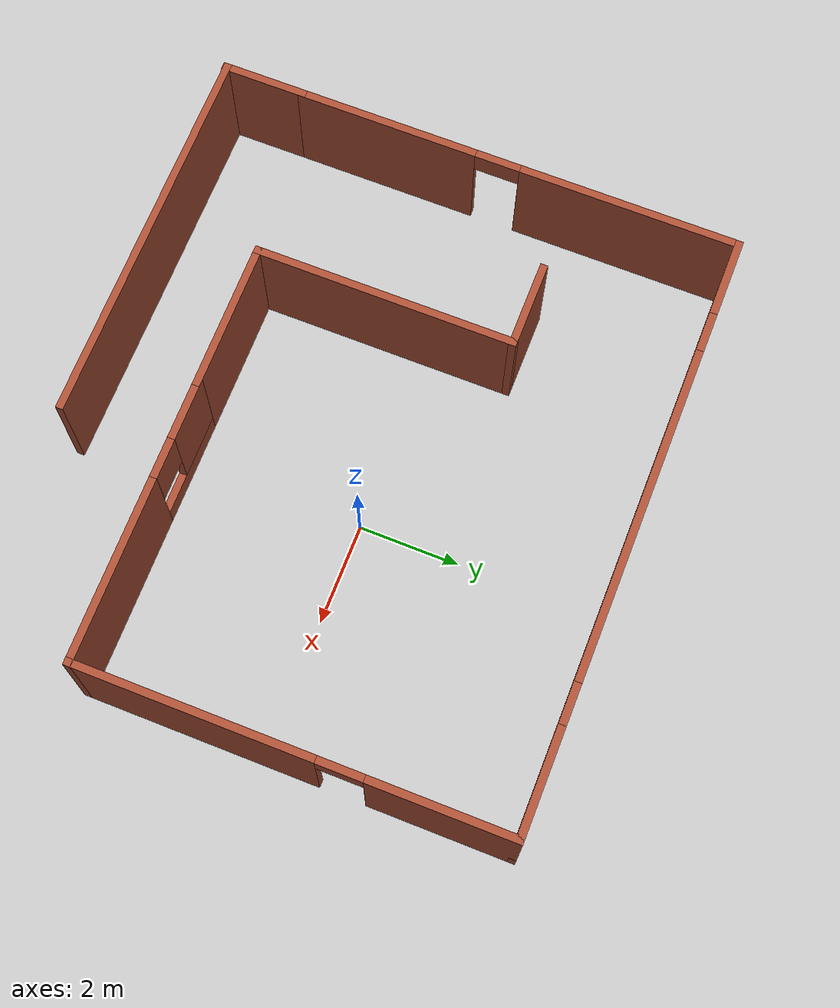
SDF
<?xml version='1.0'?>
<sdf version='1.6'>
  <model name='walls'>
    <pose frame=''>-1.12811 -0.360016 0 0 -0 0</pose>
    <link name='Wall_25'>
      <collision name='Wall_25_Collision'>
        <geometry>
          <box>
            <size>7.71292 0.15 2.5</size>
          </box>
        </geometry>
        <pose frame=''>0 0 1.25 0 -0 0</pose>
      </collision>
      <visual name='Wall_25_Visual'>
        <pose frame=''>0 0 1.25 0 -0 0</pose>
        <geometry>
          <box>
            <size>7.71292 0.15 2.5</size>
          </box>
        </geometry>
        <material>
          <script>
            <uri>file://media/materials/scripts/gazebo.material</uri>
            <name>Gazebo/Bricks</name>
          </script>
          <ambient>1 1 1 1</ambient>
        </material>
        <meta>
          <layer>0</layer>
        </meta>
      </visual>
      <pose frame=''>-2.14335 -5.21717 0 0 -0 3.13556</pose>
    </link>
    <link name='Wall_26'>
      <collision name='Wall_26_Collision'>
        <geometry>
          <box>
            <size>1.75 0.15 2.5</size>
          </box>
        </geometry>
        <pose frame=''>0 0 1.25 0 -0 0</pose>
      </collision>
      <visual name='Wall_26_Visual'>
        <pose frame=''>0 0 1.25 0 -0 0</pose>
        <geometry>
          <box>
            <size>1.75 0.15 2.5</size>
          </box>
        </geometry>
        <material>
          <script>
            <uri>file://media/materials/scripts/gazebo.material</uri>
            <name>Gazebo/Bricks</name>
          </script>
          <ambient>1 1 1 1</ambient>
        </material>
        <meta>
          <layer>0</layer>
        </meta>
      </visual>
      <pose frame=''>-5.92481 -4.40957 0 0 -0 1.5708</pose>
    </link>
    <link name='Wall_28'>
      <pose frame=''>-5.92481 0.815434 0 0 -0 1.5708</pose>
      <visual name='Wall_28_Visual_0'>
        <pose frame=''>-2.66982 0 1.25 0 -0 0</pose>
        <geometry>
          <box>
            <size>3.66035 0.15 2.5</size>
          </box>
        </geometry>
        <material>
          <script>
            <uri>file://media/materials/scripts/gazebo.material</uri>
            <name>Gazebo/Bricks</name>
          </script>
          <ambient>1 1 1 1</ambient>
        </material>
        <meta>
          <layer>0</layer>
        </meta>
      </visual>
      <collision name='Wall_28_Collision_0'>
        <geometry>
          <box>
            <size>3.66035 0.15 2.5</size>
          </box>
        </geometry>
        <pose frame=''>-2.66982 0 1.25 0 -0 0</pose>
      </collision>
      <visual name='Wall_28_Visual_1'>
        <pose frame=''>2.28018 0 1.25 0 -0 0</pose>
        <geometry>
          <box>
            <size>4.43965 0.15 2.5</size>
          </box>
        </geometry>
        <material>
          <script>
            <uri>file://media/materials/scripts/gazebo.material</uri>
            <name>Gazebo/Bricks</name>
          </script>
          <ambient>1 1 1 1</ambient>
        </material>
        <meta>
          <layer>0</layer>
        </meta>
      </visual>
      <collision name='Wall_28_Collision_1'>
        <geometry>
          <box>
            <size>4.43965 0.15 2.5</size>
          </box>
        </geometry>
        <pose frame=''>2.28018 0 1.25 0 -0 0</pose>
      </collision>
      <visual name='Wall_28_Visual_2'>
        <pose frame=''>-0.389648 0 2.25 0 -0 0</pose>
        <geometry>
          <box>
            <size>0.9 0.15 0.5</size>
          </box>
        </geometry>
        <material>
          <script>
            <uri>file://media/materials/scripts/gazebo.material</uri>
            <name>Gazebo/Bricks</name>
          </script>
          <ambient>1 1 1 1</ambient>
        </material>
        <meta>
          <layer>0</layer>
        </meta>
      </visual>
      <collision name='Wall_28_Collision_2'>
        <geometry>
          <box>
            <size>0.9 0.15 0.5</size>
          </box>
        </geometry>
        <pose frame=''>-0.389648 0 2.25 0 -0 0</pose>
      </collision>
    </link>
    <link name='Wall_29'>
      <pose frame=''>0.000191 5.24043 0 0 -0 0</pose>
      <visual name='Wall_29_Visual_0'>
        <pose frame=''>-5.20728 0 1.25 0 -0 0</pose>
        <geometry>
          <box>
            <size>1.58544 0.15 2.5</size>
          </box>
        </geometry>
        <material>
          <script>
            <uri>file://media/materials/scripts/gazebo.material</uri>
            <name>Gazebo/Bricks</name>
          </script>
          <ambient>1 1 1 1</ambient>
        </material>
        <meta>
          <layer>0</layer>
        </meta>
      </visual>
      <collision name='Wall_29_Collision_0'>
        <geometry>
          <box>
            <size>1.58544 0.15 2.5</size>
          </box>
        </geometry>
        <pose frame=''>-5.20728 0 1.25 0 -0 0</pose>
      </collision>
      <visual name='Wall_29_Visual_1'>
        <pose frame=''>0.792719 0 0.25 0 -0 0</pose>
        <geometry>
          <box>
            <size>10.4146 0.15 0.5</size>
          </box>
        </geometry>
        <material>
          <script>
            <uri>file://media/materials/scripts/gazebo.material</uri>
            <name>Gazebo/Bricks</name>
          </script>
          <ambient>1 1 1 1</ambient>
        </material>
        <meta>
          <layer>0</layer>
        </meta>
      </visual>
      <collision name='Wall_29_Collision_1'>
        <geometry>
          <box>
            <size>10.4146 0.15 0.5</size>
          </box>
        </geometry>
        <pose frame=''>0.792719 0 0.25 0 -0 0</pose>
      </collision>
      <visual name='Wall_29_Visual_2'>
        <pose frame=''>-0.290535 0 1.5 0 -0 0</pose>
        <geometry>
          <box>
            <size>6.64806 0.15 2</size>
          </box>
        </geometry>
        <material>
          <script>
            <uri>file://media/materials/scripts/gazebo.material</uri>
            <name>Gazebo/Bricks</name>
          </script>
          <ambient>1 1 1 1</ambient>
        </material>
        <meta>
          <layer>0</layer>
        </meta>
      </visual>
      <collision name='Wall_29_Collision_2'>
        <geometry>
          <box>
            <size>6.64806 0.15 2</size>
          </box>
        </geometry>
        <pose frame=''>-0.290535 0 1.5 0 -0 0</pose>
      </collision>
      <visual name='Wall_29_Visual_3'>
        <pose frame=''>4.91675 0 1.5 0 -0 0</pose>
        <geometry>
          <box>
            <size>2.16651 0.15 2</size>
          </box>
        </geometry>
        <material>
          <script>
            <uri>file://media/materials/scripts/gazebo.material</uri>
            <name>Gazebo/Bricks</name>
          </script>
          <ambient>1 1 1 1</ambient>
        </material>
        <meta>
          <layer>0</layer>
        </meta>
      </visual>
      <collision name='Wall_29_Collision_3'>
        <geometry>
          <box>
            <size>2.16651 0.15 2</size>
          </box>
        </geometry>
        <pose frame=''>4.91675 0 1.5 0 -0 0</pose>
      </collision>
      <visual name='Wall_29_Visual_4'>
        <pose frame=''>-4.01456 0 1.9 0 -0 0</pose>
        <geometry>
          <box>
            <size>0.8 0.15 1.2</size>
          </box>
        </geometry>
        <material>
          <script>
            <uri>file://media/materials/scripts/gazebo.material</uri>
            <name>Gazebo/Bricks</name>
          </script>
          <ambient>1 1 1 1</ambient>
        </material>
        <meta>
          <layer>0</layer>
        </meta>
      </visual>
      <collision name='Wall_29_Collision_4'>
        <geometry>
          <box>
            <size>0.8 0.15 1.2</size>
          </box>
        </geometry>
        <pose frame=''>-4.01456 0 1.9 0 -0 0</pose>
      </collision>
      <visual name='Wall_29_Visual_5'>
        <pose frame=''>3.43349 0 1.9 0 -0 0</pose>
        <geometry>
          <box>
            <size>0.8 0.15 1.2</size>
          </box>
        </geometry>
        <material>
          <script>
            <uri>file://media/materials/scripts/gazebo.material</uri>
            <name>Gazebo/Bricks</name>
          </script>
          <ambient>1 1 1 1</ambient>
        </material>
        <meta>
          <layer>0</layer>
        </meta>
      </visual>
      <collision name='Wall_29_Collision_5'>
        <geometry>
          <box>
            <size>0.8 0.15 1.2</size>
          </box>
        </geometry>
        <pose frame=''>3.43349 0 1.9 0 -0 0</pose>
      </collision>
    </link>
    <link name='Wall_30'>
      <pose frame=''>5.92519 1.06543 0 0 -0 -1.5708</pose>
      <visual name='Wall_30_Visual_0'>
        <pose frame=''>-2.80505 0 1.25 0 -0 0</pose>
        <geometry>
          <box>
            <size>2.8899 0.15 2.5</size>
          </box>
        </geometry>
        <material>
          <script>
            <uri>file://media/materials/scripts/gazebo.material</uri>
            <name>Gazebo/Bricks</name>
          </script>
          <ambient>1 1 1 1</ambient>
        </material>
        <meta>
          <layer>0</layer>
        </meta>
      </visual>
      <collision name='Wall_30_Collision_0'>
        <geometry>
          <box>
            <size>2.8899 0.15 2.5</size>
          </box>
        </geometry>
        <pose frame=''>-2.80505 0 1.25 0 -0 0</pose>
      </collision>
      <visual name='Wall_30_Visual_1'>
        <pose frame=''>1.89495 0 1.25 0 -0 0</pose>
        <geometry>
          <box>
            <size>4.7101 0.15 2.5</size>
          </box>
        </geometry>
        <material>
          <script>
            <uri>file://media/materials/scripts/gazebo.material</uri>
            <name>Gazebo/Bricks</name>
          </script>
          <ambient>1 1 1 1</ambient>
        </material>
        <meta>
          <layer>0</layer>
        </meta>
      </visual>
      <collision name='Wall_30_Collision_1'>
        <geometry>
          <box>
            <size>4.7101 0.15 2.5</size>
          </box>
        </geometry>
        <pose frame=''>1.89495 0 1.25 0 -0 0</pose>
      </collision>
      <visual name='Wall_30_Visual_2'>
        <pose frame=''>-0.910103 0 2.25 0 -0 0</pose>
        <geometry>
          <box>
            <size>0.9 0.15 0.5</size>
          </box>
        </geometry>
        <material>
          <script>
            <uri>file://media/materials/scripts/gazebo.material</uri>
            <name>Gazebo/Bricks</name>
          </script>
          <ambient>1 1 1 1</ambient>
        </material>
        <meta>
          <layer>0</layer>
        </meta>
      </visual>
      <collision name='Wall_30_Collision_2'>
        <geometry>
          <box>
            <size>0.9 0.15 0.5</size>
          </box>
        </geometry>
        <pose frame=''>-0.910103 0 2.25 0 -0 0</pose>
      </collision>
    </link>
    <link name='Wall_31'>
      <pose frame=''>3.12519 -3.10957 0 0 -0 3.14159</pose>
      <visual name='Wall_31_Visual_0'>
        <pose frame=''>-1.02647 0 1.25 0 -0 0</pose>
        <geometry>
          <box>
            <size>3.69707 0.15 2.5</size>
          </box>
        </geometry>
        <material>
          <script>
            <uri>file://media/materials/scripts/gazebo.material</uri>
            <name>Gazebo/Bricks</name>
          </script>
          <ambient>1 1 1 1</ambient>
        </material>
        <meta>
          <layer>0</layer>
        </meta>
      </visual>
      <collision name='Wall_31_Collision_0'>
        <geometry>
          <box>
            <size>3.69707 0.15 2.5</size>
          </box>
        </geometry>
        <pose frame=''>-1.02647 0 1.25 0 -0 0</pose>
      </collision>
      <visual name='Wall_31_Visual_1'>
        <pose frame=''>1.84853 0 0.25 0 -0 0</pose>
        <geometry>
          <box>
            <size>2.05293 0.15 0.5</size>
          </box>
        </geometry>
        <material>
          <script>
            <uri>file://media/materials/scripts/gazebo.material</uri>
            <name>Gazebo/Bricks</name>
          </script>
          <ambient>1 1 1 1</ambient>
        </material>
        <meta>
          <layer>0</layer>
        </meta>
      </visual>
      <collision name='Wall_31_Collision_1'>
        <geometry>
          <box>
            <size>2.05293 0.15 0.5</size>
          </box>
        </geometry>
        <pose frame=''>1.84853 0 0.25 0 -0 0</pose>
      </collision>
      <visual name='Wall_31_Visual_2'>
        <pose frame=''>2.24853 0 1.5 0 -0 0</pose>
        <geometry>
          <box>
            <size>1.25293 0.15 2</size>
          </box>
        </geometry>
        <material>
          <script>
            <uri>file://media/materials/scripts/gazebo.material</uri>
            <name>Gazebo/Bricks</name>
          </script>
          <ambient>1 1 1 1</ambient>
        </material>
        <meta>
          <layer>0</layer>
        </meta>
      </visual>
      <collision name='Wall_31_Collision_2'>
        <geometry>
          <box>
            <size>1.25293 0.15 2</size>
          </box>
        </geometry>
        <pose frame=''>2.24853 0 1.5 0 -0 0</pose>
      </collision>
      <visual name='Wall_31_Visual_3'>
        <pose frame=''>1.22207 0 1.9 0 -0 0</pose>
        <geometry>
          <box>
            <size>0.8 0.15 1.2</size>
          </box>
        </geometry>
        <material>
          <script>
            <uri>file://media/materials/scripts/gazebo.material</uri>
            <name>Gazebo/Bricks</name>
          </script>
          <ambient>1 1 1 1</ambient>
        </material>
        <meta>
          <layer>0</layer>
        </meta>
      </visual>
      <collision name='Wall_31_Collision_3'>
        <geometry>
          <box>
            <size>0.8 0.15 1.2</size>
          </box>
        </geometry>
        <pose frame=''>1.22207 0 1.9 0 -0 0</pose>
      </collision>
    </link>
    <link name='Wall_32'>
      <collision name='Wall_32_Collision'>
        <geometry>
          <box>
            <size>3 0.15 2.5</size>
          </box>
        </geometry>
        <pose frame=''>0 0 1.25 0 -0 0</pose>
      </collision>
      <visual name='Wall_32_Visual'>
        <pose frame=''>0 0 1.25 0 -0 0</pose>
        <geometry>
          <box>
            <size>3 0.15 2.5</size>
          </box>
        </geometry>
        <material>
          <script>
            <uri>file://media/materials/scripts/gazebo.material</uri>
            <name>Gazebo/Bricks</name>
          </script>
          <ambient>1 1 1 1</ambient>
        </material>
        <meta>
          <layer>0</layer>
        </meta>
      </visual>
      <pose frame=''>-1.09981 -3.10957 0 0 -0 3.14159</pose>
    </link>
    <link name='Wall_33'>
      <collision name='Wall_33_Collision'>
        <geometry>
          <box>
            <size>5.25 0.15 2.5</size>
          </box>
        </geometry>
        <pose frame=''>0 0 1.25 0 -0 0</pose>
      </collision>
      <visual name='Wall_33_Visual'>
        <pose frame=''>0 0 1.25 0 -0 0</pose>
        <geometry>
          <box>
            <size>5.25 0.15 2.5</size>
          </box>
        </geometry>
        <material>
          <script>
            <uri>file://media/materials/scripts/gazebo.material</uri>
            <name>Gazebo/Bricks</name>
          </script>
          <ambient>1 1 1 1</ambient>
        </material>
        <meta>
          <layer>0</layer>
        </meta>
      </visual>
      <pose frame=''>-2.52481 -0.559566 0 0 -0 1.5708</pose>
    </link>
    <link name='Wall_34'>
      <collision name='Wall_34_Collision'>
        <geometry>
          <box>
            <size>1.75 0.15 2.5</size>
          </box>
        </geometry>
        <pose frame=''>0 0 1.25 0 -0 0</pose>
      </collision>
      <visual name='Wall_34_Visual'>
        <pose frame=''>0 0 1.25 0 -0 0</pose>
        <geometry>
          <box>
            <size>1.75 0.15 2.5</size>
          </box>
        </geometry>
        <material>
          <script>
            <uri>file://media/materials/scripts/gazebo.material</uri>
            <name>Gazebo/Bricks</name>
          </script>
          <ambient>1 1 1 1</ambient>
        </material>
        <meta>
          <layer>0</layer>
        </meta>
      </visual>
      <pose frame=''>-3.32481 1.99043 0 0 -0 3.14159</pose>
    </link>
    <static>1</static>
  </model>
</sdf>
